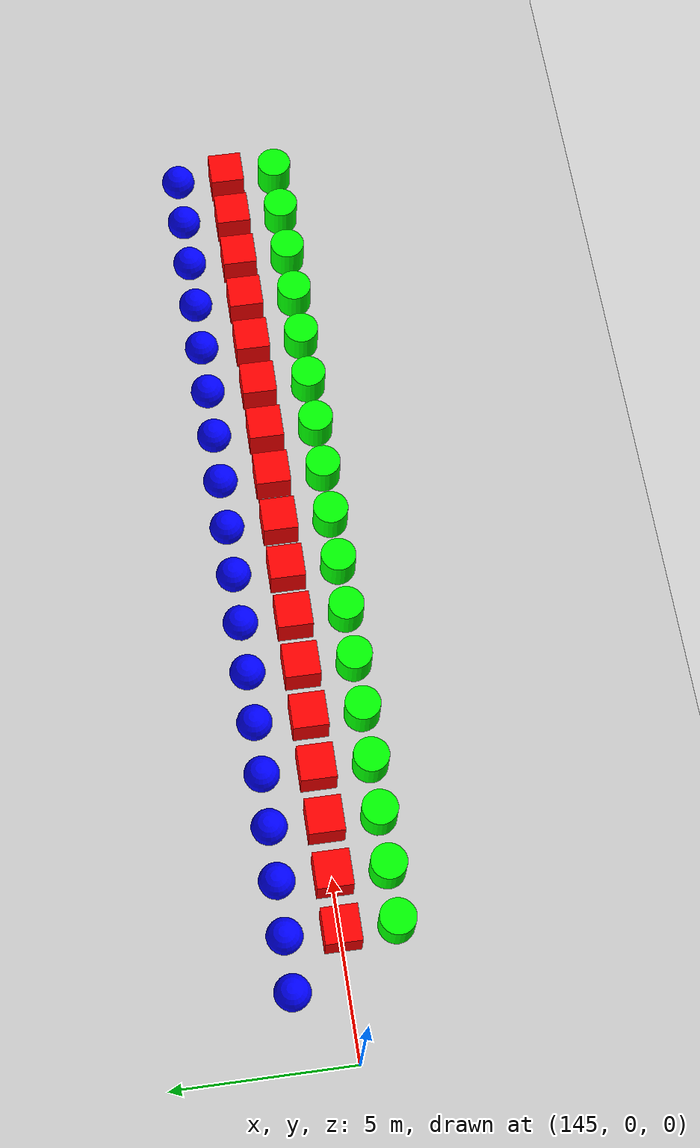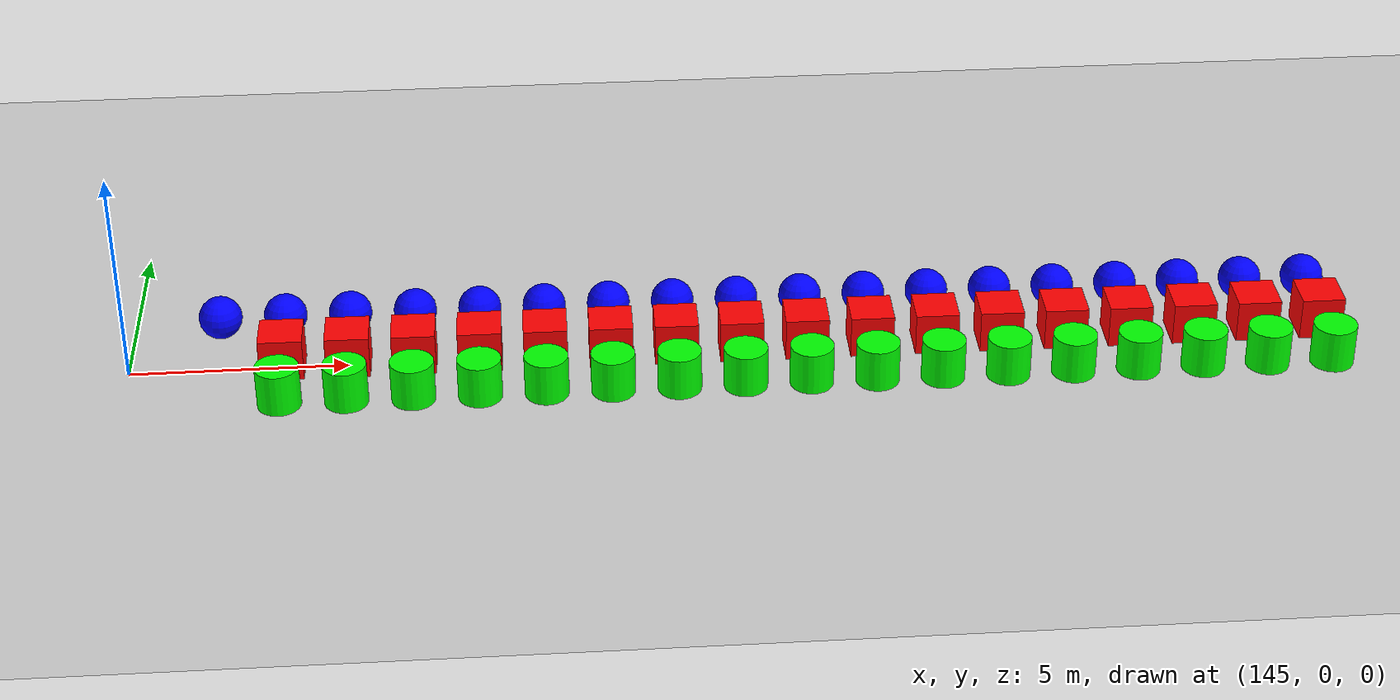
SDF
<sdf version="1.6">
 <world name="shapes">
  <model name="ground_plane">
   <static>true</static>
   <link name="link">
    <collision name="collision">
     <geometry><plane><normal>0 0 1</normal><size>100 100</size></plane></geometry>
    </collision>
    <visual name="visual">
     <geometry><plane><normal>0 0 1</normal><size>100 100</size></plane></geometry>
     <material>
      <ambient>0.8 0.8 0.8 1</ambient>
      <diffuse>0.8 0.8 0.8 1</diffuse>
      <specular>0.8 0.8 0.8 1</specular>
     </material>
    </visual>
   </link>
  </model>
  <model name="sphere_598">
   <static>true</static>
   <pose>147.0 1.5 0.5 0 0 0</pose>
   <link name="sphere_link">
    <inertial>
     <inertia><ixx>3</ixx><ixy>0</ixy><ixz>0</ixz><iyy>3</iyy><iyz>0</iyz><izz>3</izz></inertia>
     <mass>3.0</mass>
    </inertial>
    <collision name="sphere_collision"><geometry><sphere><radius>0.5</radius></sphere></geometry></collision>
    <visual name="sphere_visual">
     <geometry><sphere><radius>0.5</radius></sphere></geometry>
     <material><ambient>0 0 1 1</ambient><diffuse>0 0 1 1</diffuse><specular>0 0 1 1</specular></material>
    </visual>
   </link>
  </model>
  <model name="box_599">
   <static>true</static>
   <pose>148.5 0 0.5 0 0 0</pose>
   <link name="box_link">
    <inertial>
     <inertia><ixx>1</ixx><ixy>0</ixy><ixz>0</ixz><iyy>1</iyy><iyz>0</iyz><izz>1</izz></inertia>
     <mass>1.0</mass>
    </inertial>
    <collision name="box_collision"><geometry><box><size>1 1 1</size></box></geometry></collision>
    <visual name="box_visual">
     <geometry><box><size>1 1 1</size></box></geometry>
     <material><ambient>1 0 0 1</ambient><diffuse>1 0 0 1</diffuse><specular>1 0 0 1</specular></material>
    </visual>
   </link>
  </model>
  <model name="cylinder_599">
   <static>true</static>
   <pose>148.5 -1.5 0.5 0 0 0</pose>
   <link name="cylinder_link">
    <inertial>
     <inertia><ixx>2</ixx><ixy>0</ixy><ixz>0</ixz><iyy>2</iyy><iyz>0</iyz><izz>2</izz></inertia>
     <mass>2.0</mass>
    </inertial>
    <collision name="cylinder_collision">
     <geometry><cylinder><radius>0.5</radius><length>1.0</length></cylinder></geometry>
    </collision>
    <visual name="cylinder_visual">
     <geometry><cylinder><radius>0.5</radius><length>1.0</length></cylinder></geometry>
     <material><ambient>0 1 0 1</ambient><diffuse>0 1 0 1</diffuse><specular>0 1 0 1</specular></material>
    </visual>
   </link>
  </model>
  <model name="sphere_599">
   <static>true</static>
   <pose>148.5 1.5 0.5 0 0 0</pose>
   <link name="sphere_link">
    <inertial>
     <inertia><ixx>3</ixx><ixy>0</ixy><ixz>0</ixz><iyy>3</iyy><iyz>0</iyz><izz>3</izz></inertia>
     <mass>3.0</mass>
    </inertial>
    <collision name="sphere_collision"><geometry><sphere><radius>0.5</radius></sphere></geometry></collision>
    <visual name="sphere_visual">
     <geometry><sphere><radius>0.5</radius></sphere></geometry>
     <material><ambient>0 0 1 1</ambient><diffuse>0 0 1 1</diffuse><specular>0 0 1 1</specular></material>
    </visual>
   </link>
  </model>
  <model name="box_600">
   <static>true</static>
   <pose>150.0 0 0.5 0 0 0</pose>
   <link name="box_link">
    <inertial>
     <inertia><ixx>1</ixx><ixy>0</ixy><ixz>0</ixz><iyy>1</iyy><iyz>0</iyz><izz>1</izz></inertia>
     <mass>1.0</mass>
    </inertial>
    <collision name="box_collision"><geometry><box><size>1 1 1</size></box></geometry></collision>
    <visual name="box_visual">
     <geometry><box><size>1 1 1</size></box></geometry>
     <material><ambient>1 0 0 1</ambient><diffuse>1 0 0 1</diffuse><specular>1 0 0 1</specular></material>
    </visual>
   </link>
  </model>
  <model name="cylinder_600">
   <static>true</static>
   <pose>150.0 -1.5 0.5 0 0 0</pose>
   <link name="cylinder_link">
    <inertial>
     <inertia><ixx>2</ixx><ixy>0</ixy><ixz>0</ixz><iyy>2</iyy><iyz>0</iyz><izz>2</izz></inertia>
     <mass>2.0</mass>
    </inertial>
    <collision name="cylinder_collision">
     <geometry><cylinder><radius>0.5</radius><length>1.0</length></cylinder></geometry>
    </collision>
    <visual name="cylinder_visual">
     <geometry><cylinder><radius>0.5</radius><length>1.0</length></cylinder></geometry>
     <material><ambient>0 1 0 1</ambient><diffuse>0 1 0 1</diffuse><specular>0 1 0 1</specular></material>
    </visual>
   </link>
  </model>
  <model name="sphere_600">
   <static>true</static>
   <pose>150.0 1.5 0.5 0 0 0</pose>
   <link name="sphere_link">
    <inertial>
     <inertia><ixx>3</ixx><ixy>0</ixy><ixz>0</ixz><iyy>3</iyy><iyz>0</iyz><izz>3</izz></inertia>
     <mass>3.0</mass>
    </inertial>
    <collision name="sphere_collision"><geometry><sphere><radius>0.5</radius></sphere></geometry></collision>
    <visual name="sphere_visual">
     <geometry><sphere><radius>0.5</radius></sphere></geometry>
     <material><ambient>0 0 1 1</ambient><diffuse>0 0 1 1</diffuse><specular>0 0 1 1</specular></material>
    </visual>
   </link>
  </model>
  <model name="box_601">
   <static>true</static>
   <pose>151.5 0 0.5 0 0 0</pose>
   <link name="box_link">
    <inertial>
     <inertia><ixx>1</ixx><ixy>0</ixy><ixz>0</ixz><iyy>1</iyy><iyz>0</iyz><izz>1</izz></inertia>
     <mass>1.0</mass>
    </inertial>
    <collision name="box_collision"><geometry><box><size>1 1 1</size></box></geometry></collision>
    <visual name="box_visual">
     <geometry><box><size>1 1 1</size></box></geometry>
     <material><ambient>1 0 0 1</ambient><diffuse>1 0 0 1</diffuse><specular>1 0 0 1</specular></material>
    </visual>
   </link>
  </model>
  <model name="cylinder_601">
   <static>true</static>
   <pose>151.5 -1.5 0.5 0 0 0</pose>
   <link name="cylinder_link">
    <inertial>
     <inertia><ixx>2</ixx><ixy>0</ixy><ixz>0</ixz><iyy>2</iyy><iyz>0</iyz><izz>2</izz></inertia>
     <mass>2.0</mass>
    </inertial>
    <collision name="cylinder_collision">
     <geometry><cylinder><radius>0.5</radius><length>1.0</length></cylinder></geometry>
    </collision>
    <visual name="cylinder_visual">
     <geometry><cylinder><radius>0.5</radius><length>1.0</length></cylinder></geometry>
     <material><ambient>0 1 0 1</ambient><diffuse>0 1 0 1</diffuse><specular>0 1 0 1</specular></material>
    </visual>
   </link>
  </model>
  <model name="sphere_601">
   <static>true</static>
   <pose>151.5 1.5 0.5 0 0 0</pose>
   <link name="sphere_link">
    <inertial>
     <inertia><ixx>3</ixx><ixy>0</ixy><ixz>0</ixz><iyy>3</iyy><iyz>0</iyz><izz>3</izz></inertia>
     <mass>3.0</mass>
    </inertial>
    <collision name="sphere_collision"><geometry><sphere><radius>0.5</radius></sphere></geometry></collision>
    <visual name="sphere_visual">
     <geometry><sphere><radius>0.5</radius></sphere></geometry>
     <material><ambient>0 0 1 1</ambient><diffuse>0 0 1 1</diffuse><specular>0 0 1 1</specular></material>
    </visual>
   </link>
  </model>
  <model name="box_602">
   <static>true</static>
   <pose>153.0 0 0.5 0 0 0</pose>
   <link name="box_link">
    <inertial>
     <inertia><ixx>1</ixx><ixy>0</ixy><ixz>0</ixz><iyy>1</iyy><iyz>0</iyz><izz>1</izz></inertia>
     <mass>1.0</mass>
    </inertial>
    <collision name="box_collision"><geometry><box><size>1 1 1</size></box></geometry></collision>
    <visual name="box_visual">
     <geometry><box><size>1 1 1</size></box></geometry>
     <material><ambient>1 0 0 1</ambient><diffuse>1 0 0 1</diffuse><specular>1 0 0 1</specular></material>
    </visual>
   </link>
  </model>
  <model name="cylinder_602">
   <static>true</static>
   <pose>153.0 -1.5 0.5 0 0 0</pose>
   <link name="cylinder_link">
    <inertial>
     <inertia><ixx>2</ixx><ixy>0</ixy><ixz>0</ixz><iyy>2</iyy><iyz>0</iyz><izz>2</izz></inertia>
     <mass>2.0</mass>
    </inertial>
    <collision name="cylinder_collision">
     <geometry><cylinder><radius>0.5</radius><length>1.0</length></cylinder></geometry>
    </collision>
    <visual name="cylinder_visual">
     <geometry><cylinder><radius>0.5</radius><length>1.0</length></cylinder></geometry>
     <material><ambient>0 1 0 1</ambient><diffuse>0 1 0 1</diffuse><specular>0 1 0 1</specular></material>
    </visual>
   </link>
  </model>
  <model name="sphere_602">
   <static>true</static>
   <pose>153.0 1.5 0.5 0 0 0</pose>
   <link name="sphere_link">
    <inertial>
     <inertia><ixx>3</ixx><ixy>0</ixy><ixz>0</ixz><iyy>3</iyy><iyz>0</iyz><izz>3</izz></inertia>
     <mass>3.0</mass>
    </inertial>
    <collision name="sphere_collision"><geometry><sphere><radius>0.5</radius></sphere></geometry></collision>
    <visual name="sphere_visual">
     <geometry><sphere><radius>0.5</radius></sphere></geometry>
     <material><ambient>0 0 1 1</ambient><diffuse>0 0 1 1</diffuse><specular>0 0 1 1</specular></material>
    </visual>
   </link>
  </model>
  <model name="box_603">
   <static>true</static>
   <pose>154.5 0 0.5 0 0 0</pose>
   <link name="box_link">
    <inertial>
     <inertia><ixx>1</ixx><ixy>0</ixy><ixz>0</ixz><iyy>1</iyy><iyz>0</iyz><izz>1</izz></inertia>
     <mass>1.0</mass>
    </inertial>
    <collision name="box_collision"><geometry><box><size>1 1 1</size></box></geometry></collision>
    <visual name="box_visual">
     <geometry><box><size>1 1 1</size></box></geometry>
     <material><ambient>1 0 0 1</ambient><diffuse>1 0 0 1</diffuse><specular>1 0 0 1</specular></material>
    </visual>
   </link>
  </model>
  <model name="cylinder_603">
   <static>true</static>
   <pose>154.5 -1.5 0.5 0 0 0</pose>
   <link name="cylinder_link">
    <inertial>
     <inertia><ixx>2</ixx><ixy>0</ixy><ixz>0</ixz><iyy>2</iyy><iyz>0</iyz><izz>2</izz></inertia>
     <mass>2.0</mass>
    </inertial>
    <collision name="cylinder_collision">
     <geometry><cylinder><radius>0.5</radius><length>1.0</length></cylinder></geometry>
    </collision>
    <visual name="cylinder_visual">
     <geometry><cylinder><radius>0.5</radius><length>1.0</length></cylinder></geometry>
     <material><ambient>0 1 0 1</ambient><diffuse>0 1 0 1</diffuse><specular>0 1 0 1</specular></material>
    </visual>
   </link>
  </model>
  <model name="sphere_603">
   <static>true</static>
   <pose>154.5 1.5 0.5 0 0 0</pose>
   <link name="sphere_link">
    <inertial>
     <inertia><ixx>3</ixx><ixy>0</ixy><ixz>0</ixz><iyy>3</iyy><iyz>0</iyz><izz>3</izz></inertia>
     <mass>3.0</mass>
    </inertial>
    <collision name="sphere_collision"><geometry><sphere><radius>0.5</radius></sphere></geometry></collision>
    <visual name="sphere_visual">
     <geometry><sphere><radius>0.5</radius></sphere></geometry>
     <material><ambient>0 0 1 1</ambient><diffuse>0 0 1 1</diffuse><specular>0 0 1 1</specular></material>
    </visual>
   </link>
  </model>
  <model name="box_604">
   <static>true</static>
   <pose>156.0 0 0.5 0 0 0</pose>
   <link name="box_link">
    <inertial>
     <inertia><ixx>1</ixx><ixy>0</ixy><ixz>0</ixz><iyy>1</iyy><iyz>0</iyz><izz>1</izz></inertia>
     <mass>1.0</mass>
    </inertial>
    <collision name="box_collision"><geometry><box><size>1 1 1</size></box></geometry></collision>
    <visual name="box_visual">
     <geometry><box><size>1 1 1</size></box></geometry>
     <material><ambient>1 0 0 1</ambient><diffuse>1 0 0 1</diffuse><specular>1 0 0 1</specular></material>
    </visual>
   </link>
  </model>
  <model name="cylinder_604">
   <static>true</static>
   <pose>156.0 -1.5 0.5 0 0 0</pose>
   <link name="cylinder_link">
    <inertial>
     <inertia><ixx>2</ixx><ixy>0</ixy><ixz>0</ixz><iyy>2</iyy><iyz>0</iyz><izz>2</izz></inertia>
     <mass>2.0</mass>
    </inertial>
    <collision name="cylinder_collision">
     <geometry><cylinder><radius>0.5</radius><length>1.0</length></cylinder></geometry>
    </collision>
    <visual name="cylinder_visual">
     <geometry><cylinder><radius>0.5</radius><length>1.0</length></cylinder></geometry>
     <material><ambient>0 1 0 1</ambient><diffuse>0 1 0 1</diffuse><specular>0 1 0 1</specular></material>
    </visual>
   </link>
  </model>
  <model name="sphere_604">
   <static>true</static>
   <pose>156.0 1.5 0.5 0 0 0</pose>
   <link name="sphere_link">
    <inertial>
     <inertia><ixx>3</ixx><ixy>0</ixy><ixz>0</ixz><iyy>3</iyy><iyz>0</iyz><izz>3</izz></inertia>
     <mass>3.0</mass>
    </inertial>
    <collision name="sphere_collision"><geometry><sphere><radius>0.5</radius></sphere></geometry></collision>
    <visual name="sphere_visual">
     <geometry><sphere><radius>0.5</radius></sphere></geometry>
     <material><ambient>0 0 1 1</ambient><diffuse>0 0 1 1</diffuse><specular>0 0 1 1</specular></material>
    </visual>
   </link>
  </model>
  <model name="box_605">
   <static>true</static>
   <pose>157.5 0 0.5 0 0 0</pose>
   <link name="box_link">
    <inertial>
     <inertia><ixx>1</ixx><ixy>0</ixy><ixz>0</ixz><iyy>1</iyy><iyz>0</iyz><izz>1</izz></inertia>
     <mass>1.0</mass>
    </inertial>
    <collision name="box_collision"><geometry><box><size>1 1 1</size></box></geometry></collision>
    <visual name="box_visual">
     <geometry><box><size>1 1 1</size></box></geometry>
     <material><ambient>1 0 0 1</ambient><diffuse>1 0 0 1</diffuse><specular>1 0 0 1</specular></material>
    </visual>
   </link>
  </model>
  <model name="cylinder_605">
   <static>true</static>
   <pose>157.5 -1.5 0.5 0 0 0</pose>
   <link name="cylinder_link">
    <inertial>
     <inertia><ixx>2</ixx><ixy>0</ixy><ixz>0</ixz><iyy>2</iyy><iyz>0</iyz><izz>2</izz></inertia>
     <mass>2.0</mass>
    </inertial>
    <collision name="cylinder_collision">
     <geometry><cylinder><radius>0.5</radius><length>1.0</length></cylinder></geometry>
    </collision>
    <visual name="cylinder_visual">
     <geometry><cylinder><radius>0.5</radius><length>1.0</length></cylinder></geometry>
     <material><ambient>0 1 0 1</ambient><diffuse>0 1 0 1</diffuse><specular>0 1 0 1</specular></material>
    </visual>
   </link>
  </model>
  <model name="sphere_605">
   <static>true</static>
   <pose>157.5 1.5 0.5 0 0 0</pose>
   <link name="sphere_link">
    <inertial>
     <inertia><ixx>3</ixx><ixy>0</ixy><ixz>0</ixz><iyy>3</iyy><iyz>0</iyz><izz>3</izz></inertia>
     <mass>3.0</mass>
    </inertial>
    <collision name="sphere_collision"><geometry><sphere><radius>0.5</radius></sphere></geometry></collision>
    <visual name="sphere_visual">
     <geometry><sphere><radius>0.5</radius></sphere></geometry>
     <material><ambient>0 0 1 1</ambient><diffuse>0 0 1 1</diffuse><specular>0 0 1 1</specular></material>
    </visual>
   </link>
  </model>
  <model name="box_606">
   <static>true</static>
   <pose>159.0 0 0.5 0 0 0</pose>
   <link name="box_link">
    <inertial>
     <inertia><ixx>1</ixx><ixy>0</ixy><ixz>0</ixz><iyy>1</iyy><iyz>0</iyz><izz>1</izz></inertia>
     <mass>1.0</mass>
    </inertial>
    <collision name="box_collision"><geometry><box><size>1 1 1</size></box></geometry></collision>
    <visual name="box_visual">
     <geometry><box><size>1 1 1</size></box></geometry>
     <material><ambient>1 0 0 1</ambient><diffuse>1 0 0 1</diffuse><specular>1 0 0 1</specular></material>
    </visual>
   </link>
  </model>
  <model name="cylinder_606">
   <static>true</static>
   <pose>159.0 -1.5 0.5 0 0 0</pose>
   <link name="cylinder_link">
    <inertial>
     <inertia><ixx>2</ixx><ixy>0</ixy><ixz>0</ixz><iyy>2</iyy><iyz>0</iyz><izz>2</izz></inertia>
     <mass>2.0</mass>
    </inertial>
    <collision name="cylinder_collision">
     <geometry><cylinder><radius>0.5</radius><length>1.0</length></cylinder></geometry>
    </collision>
    <visual name="cylinder_visual">
     <geometry><cylinder><radius>0.5</radius><length>1.0</length></cylinder></geometry>
     <material><ambient>0 1 0 1</ambient><diffuse>0 1 0 1</diffuse><specular>0 1 0 1</specular></material>
    </visual>
   </link>
  </model>
  <model name="sphere_606">
   <static>true</static>
   <pose>159.0 1.5 0.5 0 0 0</pose>
   <link name="sphere_link">
    <inertial>
     <inertia><ixx>3</ixx><ixy>0</ixy><ixz>0</ixz><iyy>3</iyy><iyz>0</iyz><izz>3</izz></inertia>
     <mass>3.0</mass>
    </inertial>
    <collision name="sphere_collision"><geometry><sphere><radius>0.5</radius></sphere></geometry></collision>
    <visual name="sphere_visual">
     <geometry><sphere><radius>0.5</radius></sphere></geometry>
     <material><ambient>0 0 1 1</ambient><diffuse>0 0 1 1</diffuse><specular>0 0 1 1</specular></material>
    </visual>
   </link>
  </model>
  <model name="box_607">
   <static>true</static>
   <pose>160.5 0 0.5 0 0 0</pose>
   <link name="box_link">
    <inertial>
     <inertia><ixx>1</ixx><ixy>0</ixy><ixz>0</ixz><iyy>1</iyy><iyz>0</iyz><izz>1</izz></inertia>
     <mass>1.0</mass>
    </inertial>
    <collision name="box_collision"><geometry><box><size>1 1 1</size></box></geometry></collision>
    <visual name="box_visual">
     <geometry><box><size>1 1 1</size></box></geometry>
     <material><ambient>1 0 0 1</ambient><diffuse>1 0 0 1</diffuse><specular>1 0 0 1</specular></material>
    </visual>
   </link>
  </model>
  <model name="cylinder_607">
   <static>true</static>
   <pose>160.5 -1.5 0.5 0 0 0</pose>
   <link name="cylinder_link">
    <inertial>
     <inertia><ixx>2</ixx><ixy>0</ixy><ixz>0</ixz><iyy>2</iyy><iyz>0</iyz><izz>2</izz></inertia>
     <mass>2.0</mass>
    </inertial>
    <collision name="cylinder_collision">
     <geometry><cylinder><radius>0.5</radius><length>1.0</length></cylinder></geometry>
    </collision>
    <visual name="cylinder_visual">
     <geometry><cylinder><radius>0.5</radius><length>1.0</length></cylinder></geometry>
     <material><ambient>0 1 0 1</ambient><diffuse>0 1 0 1</diffuse><specular>0 1 0 1</specular></material>
    </visual>
   </link>
  </model>
  <model name="sphere_607">
   <static>true</static>
   <pose>160.5 1.5 0.5 0 0 0</pose>
   <link name="sphere_link">
    <inertial>
     <inertia><ixx>3</ixx><ixy>0</ixy><ixz>0</ixz><iyy>3</iyy><iyz>0</iyz><izz>3</izz></inertia>
     <mass>3.0</mass>
    </inertial>
    <collision name="sphere_collision"><geometry><sphere><radius>0.5</radius></sphere></geometry></collision>
    <visual name="sphere_visual">
     <geometry><sphere><radius>0.5</radius></sphere></geometry>
     <material><ambient>0 0 1 1</ambient><diffuse>0 0 1 1</diffuse><specular>0 0 1 1</specular></material>
    </visual>
   </link>
  </model>
  <model name="box_608">
   <static>true</static>
   <pose>162.0 0 0.5 0 0 0</pose>
   <link name="box_link">
    <inertial>
     <inertia><ixx>1</ixx><ixy>0</ixy><ixz>0</ixz><iyy>1</iyy><iyz>0</iyz><izz>1</izz></inertia>
     <mass>1.0</mass>
    </inertial>
    <collision name="box_collision"><geometry><box><size>1 1 1</size></box></geometry></collision>
    <visual name="box_visual">
     <geometry><box><size>1 1 1</size></box></geometry>
     <material><ambient>1 0 0 1</ambient><diffuse>1 0 0 1</diffuse><specular>1 0 0 1</specular></material>
    </visual>
   </link>
  </model>
  <model name="cylinder_608">
   <static>true</static>
   <pose>162.0 -1.5 0.5 0 0 0</pose>
   <link name="cylinder_link">
    <inertial>
     <inertia><ixx>2</ixx><ixy>0</ixy><ixz>0</ixz><iyy>2</iyy><iyz>0</iyz><izz>2</izz></inertia>
     <mass>2.0</mass>
    </inertial>
    <collision name="cylinder_collision">
     <geometry><cylinder><radius>0.5</radius><length>1.0</length></cylinder></geometry>
    </collision>
    <visual name="cylinder_visual">
     <geometry><cylinder><radius>0.5</radius><length>1.0</length></cylinder></geometry>
     <material><ambient>0 1 0 1</ambient><diffuse>0 1 0 1</diffuse><specular>0 1 0 1</specular></material>
    </visual>
   </link>
  </model>
  <model name="sphere_608">
   <static>true</static>
   <pose>162.0 1.5 0.5 0 0 0</pose>
   <link name="sphere_link">
    <inertial>
     <inertia><ixx>3</ixx><ixy>0</ixy><ixz>0</ixz><iyy>3</iyy><iyz>0</iyz><izz>3</izz></inertia>
     <mass>3.0</mass>
    </inertial>
    <collision name="sphere_collision"><geometry><sphere><radius>0.5</radius></sphere></geometry></collision>
    <visual name="sphere_visual">
     <geometry><sphere><radius>0.5</radius></sphere></geometry>
     <material><ambient>0 0 1 1</ambient><diffuse>0 0 1 1</diffuse><specular>0 0 1 1</specular></material>
    </visual>
   </link>
  </model>
  <model name="box_609">
   <static>true</static>
   <pose>163.5 0 0.5 0 0 0</pose>
   <link name="box_link">
    <inertial>
     <inertia><ixx>1</ixx><ixy>0</ixy><ixz>0</ixz><iyy>1</iyy><iyz>0</iyz><izz>1</izz></inertia>
     <mass>1.0</mass>
    </inertial>
    <collision name="box_collision"><geometry><box><size>1 1 1</size></box></geometry></collision>
    <visual name="box_visual">
     <geometry><box><size>1 1 1</size></box></geometry>
     <material><ambient>1 0 0 1</ambient><diffuse>1 0 0 1</diffuse><specular>1 0 0 1</specular></material>
    </visual>
   </link>
  </model>
  <model name="cylinder_609">
   <static>true</static>
   <pose>163.5 -1.5 0.5 0 0 0</pose>
   <link name="cylinder_link">
    <inertial>
     <inertia><ixx>2</ixx><ixy>0</ixy><ixz>0</ixz><iyy>2</iyy><iyz>0</iyz><izz>2</izz></inertia>
     <mass>2.0</mass>
    </inertial>
    <collision name="cylinder_collision">
     <geometry><cylinder><radius>0.5</radius><length>1.0</length></cylinder></geometry>
    </collision>
    <visual name="cylinder_visual">
     <geometry><cylinder><radius>0.5</radius><length>1.0</length></cylinder></geometry>
     <material><ambient>0 1 0 1</ambient><diffuse>0 1 0 1</diffuse><specular>0 1 0 1</specular></material>
    </visual>
   </link>
  </model>
  <model name="sphere_609">
   <static>true</static>
   <pose>163.5 1.5 0.5 0 0 0</pose>
   <link name="sphere_link">
    <inertial>
     <inertia><ixx>3</ixx><ixy>0</ixy><ixz>0</ixz><iyy>3</iyy><iyz>0</iyz><izz>3</izz></inertia>
     <mass>3.0</mass>
    </inertial>
    <collision name="sphere_collision"><geometry><sphere><radius>0.5</radius></sphere></geometry></collision>
    <visual name="sphere_visual">
     <geometry><sphere><radius>0.5</radius></sphere></geometry>
     <material><ambient>0 0 1 1</ambient><diffuse>0 0 1 1</diffuse><specular>0 0 1 1</specular></material>
    </visual>
   </link>
  </model>
  <model name="box_610">
   <static>true</static>
   <pose>165.0 0 0.5 0 0 0</pose>
   <link name="box_link">
    <inertial>
     <inertia><ixx>1</ixx><ixy>0</ixy><ixz>0</ixz><iyy>1</iyy><iyz>0</iyz><izz>1</izz></inertia>
     <mass>1.0</mass>
    </inertial>
    <collision name="box_collision"><geometry><box><size>1 1 1</size></box></geometry></collision>
    <visual name="box_visual">
     <geometry><box><size>1 1 1</size></box></geometry>
     <material><ambient>1 0 0 1</ambient><diffuse>1 0 0 1</diffuse><specular>1 0 0 1</specular></material>
    </visual>
   </link>
  </model>
  <model name="cylinder_610">
   <static>true</static>
   <pose>165.0 -1.5 0.5 0 0 0</pose>
   <link name="cylinder_link">
    <inertial>
     <inertia><ixx>2</ixx><ixy>0</ixy><ixz>0</ixz><iyy>2</iyy><iyz>0</iyz><izz>2</izz></inertia>
     <mass>2.0</mass>
    </inertial>
    <collision name="cylinder_collision">
     <geometry><cylinder><radius>0.5</radius><length>1.0</length></cylinder></geometry>
    </collision>
    <visual name="cylinder_visual">
     <geometry><cylinder><radius>0.5</radius><length>1.0</length></cylinder></geometry>
     <material><ambient>0 1 0 1</ambient><diffuse>0 1 0 1</diffuse><specular>0 1 0 1</specular></material>
    </visual>
   </link>
  </model>
  <model name="sphere_610">
   <static>true</static>
   <pose>165.0 1.5 0.5 0 0 0</pose>
   <link name="sphere_link">
    <inertial>
     <inertia><ixx>3</ixx><ixy>0</ixy><ixz>0</ixz><iyy>3</iyy><iyz>0</iyz><izz>3</izz></inertia>
     <mass>3.0</mass>
    </inertial>
    <collision name="sphere_collision"><geometry><sphere><radius>0.5</radius></sphere></geometry></collision>
    <visual name="sphere_visual">
     <geometry><sphere><radius>0.5</radius></sphere></geometry>
     <material><ambient>0 0 1 1</ambient><diffuse>0 0 1 1</diffuse><specular>0 0 1 1</specular></material>
    </visual>
   </link>
  </model>
  <model name="box_611">
   <static>true</static>
   <pose>166.5 0 0.5 0 0 0</pose>
   <link name="box_link">
    <inertial>
     <inertia><ixx>1</ixx><ixy>0</ixy><ixz>0</ixz><iyy>1</iyy><iyz>0</iyz><izz>1</izz></inertia>
     <mass>1.0</mass>
    </inertial>
    <collision name="box_collision"><geometry><box><size>1 1 1</size></box></geometry></collision>
    <visual name="box_visual">
     <geometry><box><size>1 1 1</size></box></geometry>
     <material><ambient>1 0 0 1</ambient><diffuse>1 0 0 1</diffuse><specular>1 0 0 1</specular></material>
    </visual>
   </link>
  </model>
  <model name="cylinder_611">
   <static>true</static>
   <pose>166.5 -1.5 0.5 0 0 0</pose>
   <link name="cylinder_link">
    <inertial>
     <inertia><ixx>2</ixx><ixy>0</ixy><ixz>0</ixz><iyy>2</iyy><iyz>0</iyz><izz>2</izz></inertia>
     <mass>2.0</mass>
    </inertial>
    <collision name="cylinder_collision">
     <geometry><cylinder><radius>0.5</radius><length>1.0</length></cylinder></geometry>
    </collision>
    <visual name="cylinder_visual">
     <geometry><cylinder><radius>0.5</radius><length>1.0</length></cylinder></geometry>
     <material><ambient>0 1 0 1</ambient><diffuse>0 1 0 1</diffuse><specular>0 1 0 1</specular></material>
    </visual>
   </link>
  </model>
  <model name="sphere_611">
   <static>true</static>
   <pose>166.5 1.5 0.5 0 0 0</pose>
   <link name="sphere_link">
    <inertial>
     <inertia><ixx>3</ixx><ixy>0</ixy><ixz>0</ixz><iyy>3</iyy><iyz>0</iyz><izz>3</izz></inertia>
     <mass>3.0</mass>
    </inertial>
    <collision name="sphere_collision"><geometry><sphere><radius>0.5</radius></sphere></geometry></collision>
    <visual name="sphere_visual">
     <geometry><sphere><radius>0.5</radius></sphere></geometry>
     <material><ambient>0 0 1 1</ambient><diffuse>0 0 1 1</diffuse><specular>0 0 1 1</specular></material>
    </visual>
   </link>
  </model>
  <model name="box_612">
   <static>true</static>
   <pose>168.0 0 0.5 0 0 0</pose>
   <link name="box_link">
    <inertial>
     <inertia><ixx>1</ixx><ixy>0</ixy><ixz>0</ixz><iyy>1</iyy><iyz>0</iyz><izz>1</izz></inertia>
     <mass>1.0</mass>
    </inertial>
    <collision name="box_collision"><geometry><box><size>1 1 1</size></box></geometry></collision>
    <visual name="box_visual">
     <geometry><box><size>1 1 1</size></box></geometry>
     <material><ambient>1 0 0 1</ambient><diffuse>1 0 0 1</diffuse><specular>1 0 0 1</specular></material>
    </visual>
   </link>
  </model>
  <model name="cylinder_612">
   <static>true</static>
   <pose>168.0 -1.5 0.5 0 0 0</pose>
   <link name="cylinder_link">
    <inertial>
     <inertia><ixx>2</ixx><ixy>0</ixy><ixz>0</ixz><iyy>2</iyy><iyz>0</iyz><izz>2</izz></inertia>
     <mass>2.0</mass>
    </inertial>
    <collision name="cylinder_collision">
     <geometry><cylinder><radius>0.5</radius><length>1.0</length></cylinder></geometry>
    </collision>
    <visual name="cylinder_visual">
     <geometry><cylinder><radius>0.5</radius><length>1.0</length></cylinder></geometry>
     <material><ambient>0 1 0 1</ambient><diffuse>0 1 0 1</diffuse><specular>0 1 0 1</specular></material>
    </visual>
   </link>
  </model>
  <model name="sphere_612">
   <static>true</static>
   <pose>168.0 1.5 0.5 0 0 0</pose>
   <link name="sphere_link">
    <inertial>
     <inertia><ixx>3</ixx><ixy>0</ixy><ixz>0</ixz><iyy>3</iyy><iyz>0</iyz><izz>3</izz></inertia>
     <mass>3.0</mass>
    </inertial>
    <collision name="sphere_collision"><geometry><sphere><radius>0.5</radius></sphere></geometry></collision>
    <visual name="sphere_visual">
     <geometry><sphere><radius>0.5</radius></sphere></geometry>
     <material><ambient>0 0 1 1</ambient><diffuse>0 0 1 1</diffuse><specular>0 0 1 1</specular></material>
    </visual>
   </link>
  </model>
  <model name="box_613">
   <static>true</static>
   <pose>169.5 0 0.5 0 0 0</pose>
   <link name="box_link">
    <inertial>
     <inertia><ixx>1</ixx><ixy>0</ixy><ixz>0</ixz><iyy>1</iyy><iyz>0</iyz><izz>1</izz></inertia>
     <mass>1.0</mass>
    </inertial>
    <collision name="box_collision"><geometry><box><size>1 1 1</size></box></geometry></collision>
    <visual name="box_visual">
     <geometry><box><size>1 1 1</size></box></geometry>
     <material><ambient>1 0 0 1</ambient><diffuse>1 0 0 1</diffuse><specular>1 0 0 1</specular></material>
    </visual>
   </link>
  </model>
  <model name="cylinder_613">
   <static>true</static>
   <pose>169.5 -1.5 0.5 0 0 0</pose>
   <link name="cylinder_link">
    <inertial>
     <inertia><ixx>2</ixx><ixy>0</ixy><ixz>0</ixz><iyy>2</iyy><iyz>0</iyz><izz>2</izz></inertia>
     <mass>2.0</mass>
    </inertial>
    <collision name="cylinder_collision">
     <geometry><cylinder><radius>0.5</radius><length>1.0</length></cylinder></geometry>
    </collision>
    <visual name="cylinder_visual">
     <geometry><cylinder><radius>0.5</radius><length>1.0</length></cylinder></geometry>
     <material><ambient>0 1 0 1</ambient><diffuse>0 1 0 1</diffuse><specular>0 1 0 1</specular></material>
    </visual>
   </link>
  </model>
  <model name="sphere_613">
   <static>true</static>
   <pose>169.5 1.5 0.5 0 0 0</pose>
   <link name="sphere_link">
    <inertial>
     <inertia><ixx>3</ixx><ixy>0</ixy><ixz>0</ixz><iyy>3</iyy><iyz>0</iyz><izz>3</izz></inertia>
     <mass>3.0</mass>
    </inertial>
    <collision name="sphere_collision"><geometry><sphere><radius>0.5</radius></sphere></geometry></collision>
    <visual name="sphere_visual">
     <geometry><sphere><radius>0.5</radius></sphere></geometry>
     <material><ambient>0 0 1 1</ambient><diffuse>0 0 1 1</diffuse><specular>0 0 1 1</specular></material>
    </visual>
   </link>
  </model>
  <model name="box_614">
   <static>true</static>
   <pose>171.0 0 0.5 0 0 0</pose>
   <link name="box_link">
    <inertial>
     <inertia><ixx>1</ixx><ixy>0</ixy><ixz>0</ixz><iyy>1</iyy><iyz>0</iyz><izz>1</izz></inertia>
     <mass>1.0</mass>
    </inertial>
    <collision name="box_collision"><geometry><box><size>1 1 1</size></box></geometry></collision>
    <visual name="box_visual">
     <geometry><box><size>1 1 1</size></box></geometry>
     <material><ambient>1 0 0 1</ambient><diffuse>1 0 0 1</diffuse><specular>1 0 0 1</specular></material>
    </visual>
   </link>
  </model>
  <model name="cylinder_614">
   <static>true</static>
   <pose>171.0 -1.5 0.5 0 0 0</pose>
   <link name="cylinder_link">
    <inertial>
     <inertia><ixx>2</ixx><ixy>0</ixy><ixz>0</ixz><iyy>2</iyy><iyz>0</iyz><izz>2</izz></inertia>
     <mass>2.0</mass>
    </inertial>
    <collision name="cylinder_collision">
     <geometry><cylinder><radius>0.5</radius><length>1.0</length></cylinder></geometry>
    </collision>
    <visual name="cylinder_visual">
     <geometry><cylinder><radius>0.5</radius><length>1.0</length></cylinder></geometry>
     <material><ambient>0 1 0 1</ambient><diffuse>0 1 0 1</diffuse><specular>0 1 0 1</specular></material>
    </visual>
   </link>
  </model>
  <model name="sphere_614">
   <static>true</static>
   <pose>171.0 1.5 0.5 0 0 0</pose>
   <link name="sphere_link">
    <inertial>
     <inertia><ixx>3</ixx><ixy>0</ixy><ixz>0</ixz><iyy>3</iyy><iyz>0</iyz><izz>3</izz></inertia>
     <mass>3.0</mass>
    </inertial>
    <collision name="sphere_collision"><geometry><sphere><radius>0.5</radius></sphere></geometry></collision>
    <visual name="sphere_visual">
     <geometry><sphere><radius>0.5</radius></sphere></geometry>
     <material><ambient>0 0 1 1</ambient><diffuse>0 0 1 1</diffuse><specular>0 0 1 1</specular></material>
    </visual>
   </link>
  </model>
  <model name="box_615">
   <static>true</static>
   <pose>172.5 0 0.5 0 0 0</pose>
   <link name="box_link">
    <inertial>
     <inertia><ixx>1</ixx><ixy>0</ixy><ixz>0</ixz><iyy>1</iyy><iyz>0</iyz><izz>1</izz></inertia>
     <mass>1.0</mass>
    </inertial>
    <collision name="box_collision"><geometry><box><size>1 1 1</size></box></geometry></collision>
    <visual name="box_visual">
     <geometry><box><size>1 1 1</size></box></geometry>
     <material><ambient>1 0 0 1</ambient><diffuse>1 0 0 1</diffuse><specular>1 0 0 1</specular></material>
    </visual>
   </link>
  </model>
  <model name="cylinder_615">
   <static>true</static>
   <pose>172.5 -1.5 0.5 0 0 0</pose>
   <link name="cylinder_link">
    <inertial>
     <inertia><ixx>2</ixx><ixy>0</ixy><ixz>0</ixz><iyy>2</iyy><iyz>0</iyz><izz>2</izz></inertia>
     <mass>2.0</mass>
    </inertial>
    <collision name="cylinder_collision">
     <geometry><cylinder><radius>0.5</radius><length>1.0</length></cylinder></geometry>
    </collision>
    <visual name="cylinder_visual">
     <geometry><cylinder><radius>0.5</radius><length>1.0</length></cylinder></geometry>
     <material><ambient>0 1 0 1</ambient><diffuse>0 1 0 1</diffuse><specular>0 1 0 1</specular></material>
    </visual>
   </link>
  </model>
  <model name="sphere_615">
   <static>true</static>
   <pose>172.5 1.5 0.5 0 0 0</pose>
   <link name="sphere_link">
    <inertial>
     <inertia><ixx>3</ixx><ixy>0</ixy><ixz>0</ixz><iyy>3</iyy><iyz>0</iyz><izz>3</izz></inertia>
     <mass>3.0</mass>
    </inertial>
    <collision name="sphere_collision"><geometry><sphere><radius>0.5</radius></sphere></geometry></collision>
    <visual name="sphere_visual">
     <geometry><sphere><radius>0.5</radius></sphere></geometry>
     <material><ambient>0 0 1 1</ambient><diffuse>0 0 1 1</diffuse><specular>0 0 1 1</specular></material>
    </visual>
   </link>
  </model>
 </world>
</sdf>
